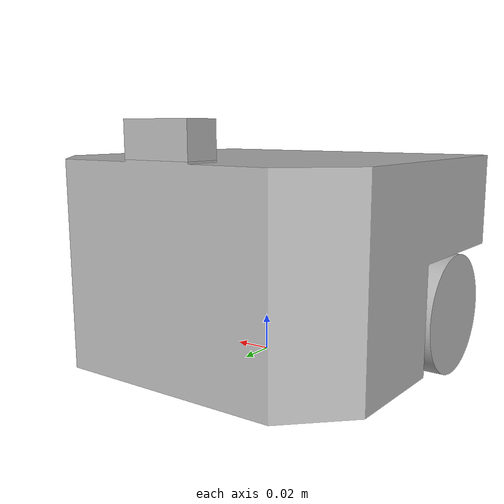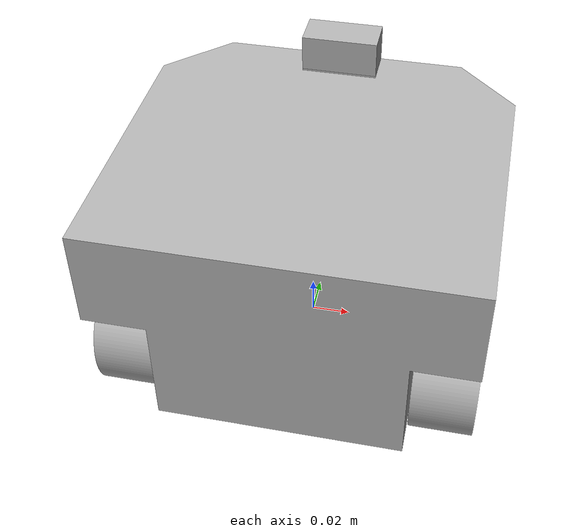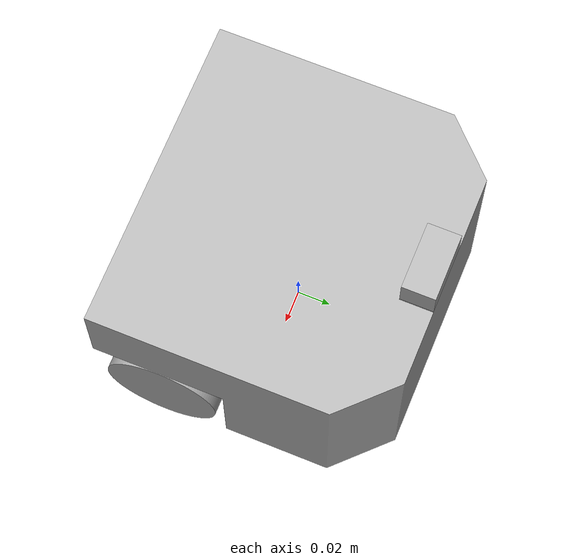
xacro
<?xml version="1.0" ?>
<robot name="DDRM" xmlns:xacro="http://www.ros.org/wiki/xacro">

<xacro:include filename="$(find DDRM_description)/urdf/materials.xacro" />
<xacro:include filename="$(find DDRM_description)/urdf/DDRM.ros2control" />
<xacro:include filename="$(find DDRM_description)/urdf/DDRM.gazebo" />
<link name="base_link">
  <inertial>
    <origin xyz="-6.490307168177591e-16 0.0020121119114001255 0.05843539265059488" rpy="0 0 0"/>
    <mass value="25.96071096243103"/>
    <inertia ixx="0.089883" iyy="0.093648" izz="0.129137" ixy="0.0" iyz="0.003165" ixz="-0.0"/>
  </inertial>
  <visual>
    <origin xyz="0 0 0" rpy="0 0 0"/>
    <geometry>
      <mesh filename="file://$(find DDRM_description)/meshes/base_link.stl" scale="0.001 0.001 0.001"/>
    </geometry>
    <material name="silver"/>
  </visual>
  <collision>
    <origin xyz="0 0 0" rpy="0 0 0"/>
    <geometry>
      <mesh filename="file://$(find DDRM_description)/meshes/base_link.stl" scale="0.001 0.001 0.001"/>
    </geometry>
  </collision>
</link>

<link name="rwheel_1">
  <inertial>
    <origin xyz="0.01575 -6.938893903907228e-18 0.0" rpy="0 0 0"/>
    <mass value="0.898023945869377"/>
    <inertia ixx="0.000519" iyy="0.000334" izz="0.000334" ixy="-0.0" iyz="-0.0" ixz="0.0"/>
  </inertial>
  <visual>
    <origin xyz="-0.0635 0.0475 -0.025" rpy="0 0 0"/>
    <geometry>
      <mesh filename="file://$(find DDRM_description)/meshes/rwheel_1.stl" scale="0.001 0.001 0.001"/>
    </geometry>
    <material name="silver"/>
  </visual>
  <collision>
    <origin xyz="-0.0635 0.0475 -0.025" rpy="0 0 0"/>
    <geometry>
      <mesh filename="file://$(find DDRM_description)/meshes/rwheel_1.stl" scale="0.001 0.001 0.001"/>
    </geometry>
  </collision>
</link>

<link name="lwheel_1">
  <inertial>
    <origin xyz="-0.015749999999999986 -1.3877787807814457e-17 0.0" rpy="0 0 0"/>
    <mass value="0.8980239458693772"/>
    <inertia ixx="0.000519" iyy="0.000334" izz="0.000334" ixy="-0.0" iyz="0.0" ixz="-0.0"/>
  </inertial>
  <visual>
    <origin xyz="0.0635 0.0475 -0.025" rpy="0 0 0"/>
    <geometry>
      <mesh filename="file://$(find DDRM_description)/meshes/lwheel_1.stl" scale="0.001 0.001 0.001"/>
    </geometry>
    <material name="silver"/>
  </visual>
  <collision>
    <origin xyz="0.0635 0.0475 -0.025" rpy="0 0 0"/>
    <geometry>
      <mesh filename="file://$(find DDRM_description)/meshes/lwheel_1.stl" scale="0.001 0.001 0.001"/>
    </geometry>
  </collision>
</link>

<link name="camera_1">
  <inertial>
    <origin xyz="0.0 -1.3877787807814457e-17 0.00949999999999998" rpy="0 0 0"/>
    <mass value="0.11932000000000001"/>
    <inertia ixx="8e-06" iyy="1.9e-05" izz="2e-05" ixy="0.0" iyz="-0.0" ixz="-0.0"/>
  </inertial>
  <visual>
    <origin xyz="-0.0 -0.0775 -0.113" rpy="0 0 0"/>
    <geometry>
      <mesh filename="file://$(find DDRM_description)/meshes/camera_1.stl" scale="0.001 0.001 0.001"/>
    </geometry>
    <material name="silver"/>
  </visual>
  <collision>
    <origin xyz="-0.0 -0.0775 -0.113" rpy="0 0 0"/>
    <geometry>
      <mesh filename="file://$(find DDRM_description)/meshes/camera_1.stl" scale="0.001 0.001 0.001"/>
    </geometry>
  </collision>
</link>

<joint name="Revolute 1" type="continuous">
  <origin xyz="0.0635 -0.0475 0.025" rpy="0 0 0"/>
  <parent link="base_link"/>
  <child link="rwheel_1"/>
  <axis xyz="1.0 0.0 0.0"/>
</joint>

<joint name="Revolute 2" type="continuous">
  <origin xyz="-0.0635 -0.0475 0.025" rpy="0 0 0"/>
  <parent link="base_link"/>
  <child link="lwheel_1"/>
  <axis xyz="-1.0 0.0 0.0"/>
</joint>

<joint name="Rigid 3" type="fixed">
  <origin xyz="0.0 0.0775 0.113" rpy="0 0 0"/>
  <parent link="base_link"/>
  <child link="camera_1"/>
</joint>

</robot>

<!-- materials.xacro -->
<robot name="ddmr" xmlns:xacro="http://www.ros.org/wiki/xacro" >

<material name="silver">
  <color rgba="0.700 0.700 0.700 1.000"/>
</material>

</robot>

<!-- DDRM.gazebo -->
<robot name="DDRM" xmlns:xacro="http://www.ros.org/wiki/xacro" >

<xacro:property name="body_color" value="Gazebo/Silver" />

<gazebo reference="base_link">
  <material>${body_color}</material>
  <mu1>0.2</mu1>
  <mu2>0.2</mu2>
  <self_collide>true</self_collide>
  <gravity>true</gravity>
</gazebo>

<gazebo reference="rwheel_1">
  <material>${body_color}</material>
  <mu1>0.2</mu1>
  <mu2>0.2</mu2>
  <self_collide>true</self_collide>
</gazebo>

<gazebo reference="lwheel_1">
  <material>${body_color}</material>
  <mu1>0.2</mu1>
  <mu2>0.2</mu2>
  <self_collide>true</self_collide>
</gazebo>

<gazebo reference="camera_1">
  <material>${body_color}</material>
  <mu1>0.2</mu1>
  <mu2>0.2</mu2>
  <self_collide>true</self_collide>
</gazebo>

</robot>
